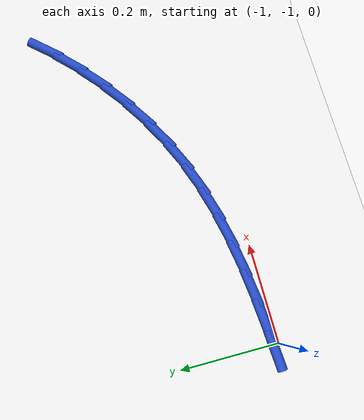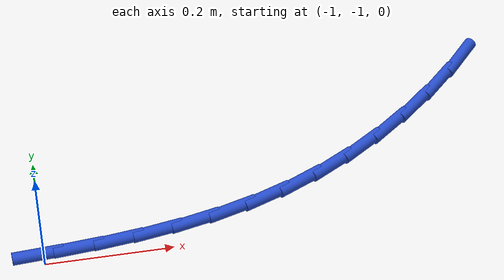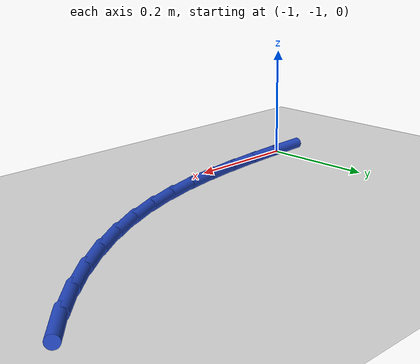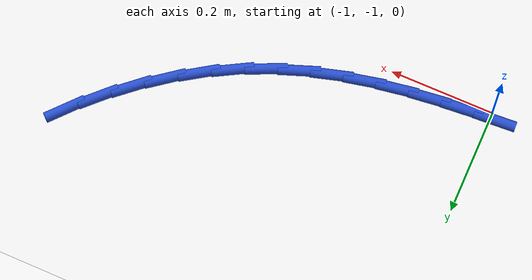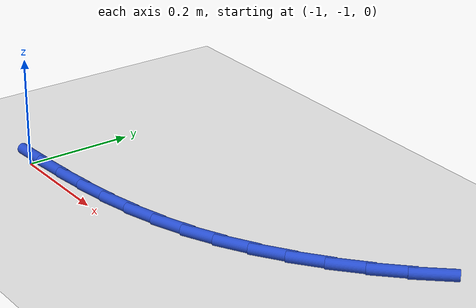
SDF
<sdf version="1.6">
 <world name="default">
  <model name="ground_plane">
   <static>1</static>
   <link name="link">
    <collision name="collision">
     <geometry><plane><normal>0 0 1</normal><size>100 100</size></plane></geometry>
     <surface><friction><ode><mu>100</mu><mu2>50</mu2></ode></friction></surface>
    </collision>
    <visual name="visual">
     <cast_shadows>0</cast_shadows>
     <geometry><plane><normal>0 0 1</normal><size>100 100</size></plane></geometry>
     <material>
      <script><uri>file://media/materials/scripts/gazebo.material</uri><name>Gazebo/WhiteGlow</name></script>
     </material>
    </visual>
   </link>
  </model>
  <model name="line">
   <link name="link_85">
    <pose>-1.0091932029876298 -0.987391790554698 0.01 0 1.57 0.060334984729466745</pose>
    <collision name="collision">
     <geometry><cylinder><radius>0.01</radius><length>0.08</length></cylinder></geometry>
    </collision>
    <visual name="visual">
     <material>
      <script><name>Gazebo/Blue</name><uri>file://media/materials/scripts/gazebo.material</uri></script>
     </material>
     <geometry><cylinder><radius>0.01</radius><length>0.08</length></cylinder></geometry>
    </visual>
   </link>
   <link name="link_86">
    <pose>-0.9458583308617816 -0.9835658383338657 0.01 0 1.57 0.08411160536981378</pose>
    <collision name="collision">
     <geometry><cylinder><radius>0.01</radius><length>0.08</length></cylinder></geometry>
    </collision>
    <visual name="visual">
     <material>
      <script><name>Gazebo/Blue</name><uri>file://media/materials/scripts/gazebo.material</uri></script>
     </material>
     <geometry><cylinder><radius>0.01</radius><length>0.08</length></cylinder></geometry>
    </visual>
   </link>
   <link name="link_87">
    <pose>-0.8833698782106544 -0.9782974040940213 0.01 0 1.57 0.11776037714216142</pose>
    <collision name="collision">
     <geometry><cylinder><radius>0.01</radius><length>0.08</length></cylinder></geometry>
    </collision>
    <visual name="visual">
     <material>
      <script><name>Gazebo/Blue</name><uri>file://media/materials/scripts/gazebo.material</uri></script>
     </material>
     <geometry><cylinder><radius>0.01</radius><length>0.08</length></cylinder></geometry>
    </visual>
   </link>
   <link name="link_88">
    <pose>-0.8217972735111266 -0.9710128870758702 0.01 0 1.57 0.16155433961665427</pose>
    <collision name="collision">
     <geometry><cylinder><radius>0.01</radius><length>0.08</length></cylinder></geometry>
    </collision>
    <visual name="visual">
     <material>
      <script><name>Gazebo/Blue</name><uri>file://media/materials/scripts/gazebo.material</uri></script>
     </material>
     <geometry><cylinder><radius>0.01</radius><length>0.08</length></cylinder></geometry>
    </visual>
   </link>
   <link name="link_89">
    <pose>-0.7612099452400739 -0.961138686520118 0.01 0 1.57 0.21559371142912898</pose>
    <collision name="collision">
     <geometry><cylinder><radius>0.01</radius><length>0.08</length></cylinder></geometry>
    </collision>
    <visual name="visual">
     <material>
      <script><name>Gazebo/Blue</name><uri>file://media/materials/scripts/gazebo.material</uri></script>
     </material>
     <geometry><cylinder><radius>0.01</radius><length>0.08</length></cylinder></geometry>
    </visual>
   </link>
   <link name="link_90">
    <pose>-0.7016773218743749 -0.9481012016674704 0.01 0 1.57 0.2796640303294333</pose>
    <collision name="collision">
     <geometry><cylinder><radius>0.01</radius><length>0.08</length></cylinder></geometry>
    </collision>
    <visual name="visual">
     <material>
      <script><name>Gazebo/Blue</name><uri>file://media/materials/scripts/gazebo.material</uri></script>
     </material>
     <geometry><cylinder><radius>0.01</radius><length>0.08</length></cylinder></geometry>
    </visual>
   </link>
   <link name="link_91">
    <pose>-0.6432688318909052 -0.9313268317586321 0.01 0 1.57 0.35307766720185046</pose>
    <collision name="collision">
     <geometry><cylinder><radius>0.01</radius><length>0.08</length></cylinder></geometry>
    </collision>
    <visual name="visual">
     <material>
      <script><name>Gazebo/Blue</name><uri>file://media/materials/scripts/gazebo.material</uri></script>
     </material>
     <geometry><cylinder><radius>0.01</radius><length>0.08</length></cylinder></geometry>
    </visual>
   </link>
   <link name="link_92">
    <pose>-0.5860539037665434 -0.91024197603431 0.01 0 1.57 0.4326804961732992</pose>
    <collision name="collision">
     <geometry><cylinder><radius>0.01</radius><length>0.08</length></cylinder></geometry>
    </collision>
    <visual name="visual">
     <material>
      <script><name>Gazebo/Blue</name><uri>file://media/materials/scripts/gazebo.material</uri></script>
     </material>
     <geometry><cylinder><radius>0.01</radius><length>0.08</length></cylinder></geometry>
    </visual>
   </link>
   <link name="link_93">
    <pose>-0.5301312629704905 -0.8844130240621284 0.01 0 1.57 0.5095720792336422</pose>
    <collision name="collision">
     <geometry><cylinder><radius>0.01</radius><length>0.08</length></cylinder></geometry>
    </collision>
    <visual name="visual">
     <material>
      <script><name>Gazebo/Blue</name><uri>file://media/materials/scripts/gazebo.material</uri></script>
     </material>
     <geometry><cylinder><radius>0.01</radius><length>0.08</length></cylinder></geometry>
    </visual>
   </link>
   <link name="link_94">
    <pose>-0.4757263191143871 -0.8540117024463125 0.01 0 1.57 0.5821034722088624</pose>
    <collision name="collision">
     <geometry><cylinder><radius>0.01</radius><length>0.08</length></cylinder></geometry>
    </collision>
    <visual name="visual">
     <material>
      <script><name>Gazebo/Blue</name><uri>file://media/materials/scripts/gazebo.material</uri></script>
     </material>
     <geometry><cylinder><radius>0.01</radius><length>0.08</length></cylinder></geometry>
    </visual>
   </link>
   <link name="link_95">
    <pose>-0.4230987161591331 -0.8193733203763505 0.01 0 1.57 0.6510129135900594</pose>
    <collision name="collision">
     <geometry><cylinder><radius>0.01</radius><length>0.08</length></cylinder></geometry>
    </collision>
    <visual name="visual">
     <material>
      <script><name>Gazebo/Blue</name><uri>file://media/materials/scripts/gazebo.material</uri></script>
     </material>
     <geometry><cylinder><radius>0.01</radius><length>0.08</length></cylinder></geometry>
    </visual>
   </link>
   <link name="link_96">
    <pose>-0.3725080986204234 -0.7808331896927074 0.01 0 1.57 0.7170602505448634</pose>
    <collision name="collision">
     <geometry><cylinder><radius>0.01</radius><length>0.08</length></cylinder></geometry>
    </collision>
    <visual name="visual">
     <material>
      <script><name>Gazebo/Blue</name><uri>file://media/materials/scripts/gazebo.material</uri></script>
     </material>
     <geometry><cylinder><radius>0.01</radius><length>0.08</length></cylinder></geometry>
    </visual>
   </link>
   <link name="link_97">
    <pose>-0.3242141110139514 -0.7387266222358481 0.01 0 1.57 0.7810059985288215</pose>
    <collision name="collision">
     <geometry><cylinder><radius>0.01</radius><length>0.08</length></cylinder></geometry>
    </collision>
    <visual name="visual">
     <material>
      <script><name>Gazebo/Blue</name><uri>file://media/materials/scripts/gazebo.material</uri></script>
     </material>
     <geometry><cylinder><radius>0.01</radius><length>0.08</length></cylinder></geometry>
    </visual>
   </link>
   <link name="link_98">
    <pose>-0.27847639785541045 -0.6933889298462368 0.01 0 1.57 0.8436033531556838</pose>
    <collision name="collision">
     <geometry><cylinder><radius>0.01</radius><length>0.08</length></cylinder></geometry>
    </collision>
    <visual name="visual">
     <material>
      <script><name>Gazebo/Blue</name><uri>file://media/materials/scripts/gazebo.material</uri></script>
     </material>
     <geometry><cylinder><radius>0.01</radius><length>0.08</length></cylinder></geometry>
    </visual>
   </link>
  </model>
 </world>
</sdf>
